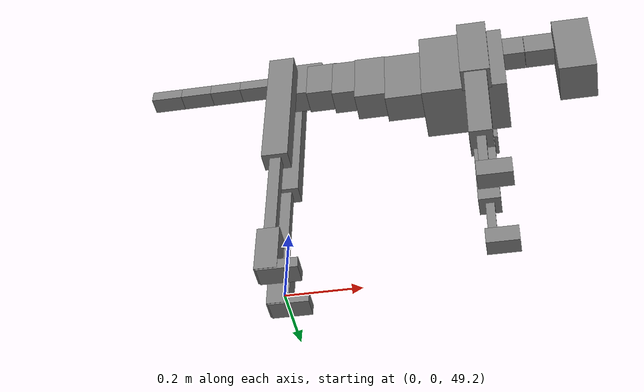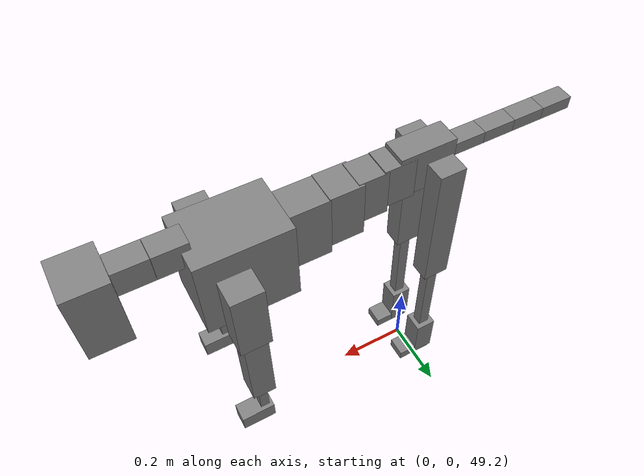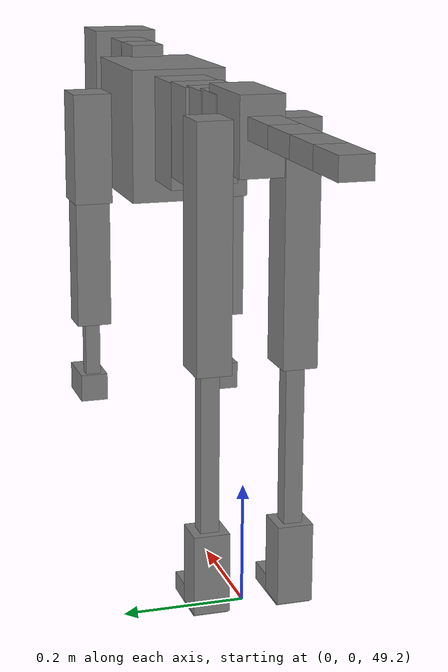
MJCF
<mujoco model="dog">

    <default>
        <joint armature="0.02" stiffness="1" damping="0.2" limited="true"/>
        <geom condim="3" friction="1 0.05 0.05" margin="0.01"/>
        <motor ctrllimited="true" ctrlrange="-1.0 1.0" forcelimited="true" gear="50"/>
    </default>

    <compiler inertiafromgeom="true" angle="radian"/>

    <option timestep="0.016" iterations="50" tolerance="1e-10" solver="Newton" jacobian="dense" cone="pyramidal"/>

    <size nconmax="20000" njmax="60000" nstack="5000000"/>
    <visual>
        <map force="0.1" zfar="30"/>
        <rgba haze="0.15 0.25 0.35 1"/>
        <quality shadowsize="2048"/>
        <global offwidth="800" offheight="800"/>
    </visual>

    <asset>
        <texture type="skybox" builtin="gradient" rgb1="0.3 0.5 0.7" rgb2="0 0 0" width="512" height="512"/>
        <texture name="texplane" type="2d" builtin="checker" rgb1=".2 .3 .4" rgb2=".1 0.15 0.2" width="512" height="512"
                 mark="cross" markrgb=".8 .8 .8"/>
        <texture name="texgeom" type="cube" builtin="flat" mark="cross" width="127" height="1278" rgb1="0.8 0.6 0.4"
                 rgb2="0.8 0.6 0.4" markrgb="1 1 1" random="0.01"/>

        <material name="matplane" reflectance="0.3" texture="texplane" texrepeat="1 1" texuniform="true"/>
        <material name="matgeom" texture="texgeom" texuniform="true" rgba="0.8 0.6 .4 1"/>
    </asset>

    <worldbody>
        <geom name="floor" pos="0 0 0" size="0 0 .25" type="plane" material="matplane" condim="3"/>

        <light directional="false" diffuse=".2 .2 .2" specular="0 0 0" pos="0 0 5" dir="0 0 -1" castshadow="false"/>
        <light mode="targetbodycom" target="torso" directional="false" diffuse=".8 .8 .8" specular="0.3 0.3 0.3"
               pos="0 0 4.0" dir="0 0 -1"/>

        <body name="root" pos="0 0 50">
            <freejoint name="root_1"/>
            <geom type="box" pos="0 0 -0.02" size="0.0774  0.0358  0.063" density="2030"/>

            <body name="spine1" pos="0.054 0 0">
                <joint name="spine1_y" axis="0 1 0" range="0 0.7" limited="true"/>
                <geom type="box" pos="0.02375 0 -0.03" size="0.04375  0.0375  0.05985" density="2030"/>

                <body name="spine2" pos="0.0612 0 0">
                    <joint name="spine2_y" axis="0 1 0" range="-0.15 0.15" limited="true"/>
                    <geom type="box" pos="0.03555  0  -0.04" size="0.04055  0.039  0.06615" density="2030"/>

                    <body name="spine3" pos="0.0730 0 0">
                        <joint name="spine3_y" axis="0 1 0" range="-0.15 0.15" limited="true"/>
                        <geom type="box" pos="0.03555  0  -0.057" size="0.04555  0.0445  0.081" density="2030"/>

                        <body name="spine4" pos="0.0780 0 0">
                            <joint name="spine4_y" axis="0 1 0" range="-0.15 0.15" limited="true"/>
                            <geom type="box" pos="0.05265  0  -0.07" size="0.05265  0.045  0.09135" density="2030"/>

                            <body name="torso" pos="0.1082 0 0">
                                <joint name="torso_y" axis="0 1 0" range="-0.15 0.15" limited="true"/>
                                <geom type="box" pos="0.11925  0  -0.085" size="0.11925  0.085  0.11745"
                                      density="2030"/>

                                <body name="neck1" pos="0.2160  0   0.0180">
                                    <joint name="neck1_y" axis="0 1 0" range="-1.2  -1" limited="true"/>
                                    <geom type="box" pos="0.0423  0  0" size="0.0423  0.03  0.036" density="2325"/>

                                    <body name="neck2" pos="0.0853  0  0">
                                        <joint name="neck2_y" axis="0 1 0" range="0.1  0" limited="true"/>
                                        <geom type="box" pos="0.0423  0  0" size="0.0423  0.03  0.036" density="2325"/>

                                        <body name="head" pos="0.0853  0  0">
                                            <joint name="head_y" axis="0 1 0" range="-0.3  -0.2" limited="true"/>
                                            <geom type="box" pos="0.0531  0  -0.055" size="0.0531  0.06  0.1044"
                                                  density="4030"/>

                                        </body>
                                    </body>
                                </body>

                                <body name="front_shoulder" pos="0.156  0   -0.0480">
                                    <joint name="front_shoulder_y" axis="0 1 0" range="-1 1.5" limited="true"/>
                                    <geom type="box" pos="0 0.13 -0.0741" size="0.0407  0.0348  0.1007" density="1158"/>
                                    <geom type="box" pos="0 -0.13 -0.0741" size="0.0407  0.0348  0.1007"
                                          density="1158"/>

                                    <body name="front_elbow" pos="0  0  -0.1481">
                                        <joint name="front_elbow_y" axis="0 1 0" range="-2 0" limited="true"/>
                                        <geom type="box" pos="0 0.13 -0.1299" size="0.0310  0.0317  0.1299"
                                              density="1081"/>
                                        <geom type="box" pos="0 -0.13 -0.1299" size="0.0310  0.0317  0.1299"
                                              density="1081"/>

                                        <body name="front_wrist" pos="0  0  -0.2599">
                                            <joint name="front_wrist_y" axis="0 1 0" range="-0.2 0" limited="true"/>
                                            <geom type="box" pos="0 0.13 -0.0574" size="0.0124  0.0138  0.0706"
                                                  density="1664"/>
                                            <geom type="box" pos="0 -0.13 -0.0574" size="0.0124  0.0138  0.0706"
                                                  density="1664"/>

                                            <body name="front_finger_end" pos="0  0  -0.1148">
                                                <joint name="front_finger_y" axis="0 1 0" range="-0.4 1"
                                                       limited="true"/>
                                                <geom type="box" pos="0.0252  0.13  -0.0105"
                                                      size="0.0461  0.0252  0.0255" density="1515"/>
                                                <geom type="box" pos="0.0252  -0.13  -0.0105"
                                                      size="0.0461  0.0252  0.0255" density="1515"/>

                                            </body>

                                        </body>
                                    </body>
                                </body>

                            </body>
                        </body>
                    </body>
                </body>
            </body>

            <body name="back_hip" pos="-0.03 0 -0.018">
                <joint name="back_hip_y" axis="0 1 0" range="-1.5 0.3" limited="true"/>
                <geom type="box" pos="0 0.07 -0.1747" size="0.0364  0.0285  0.1975" density="1154"/>
                <geom type="box" pos="0 -0.07 -0.1747" size="0.0364  0.0285  0.1975" density="1154"/>

                <body name="back_knee" pos="0  0  -0.3495">
                    <joint name="back_knee_y" axis="0 1 0" range="0 2.8" limited="true"/>
                    <geom type="box" pos="0 0.07 -0.1494" size="0.0156  0.0154  0.1649" density="1227"/>
                    <geom type="box" pos="0 -0.07 -0.1494" size="0.0156  0.0154  0.1649" density="1227"/>

                    <body name="back_ankle" pos="0  0  -0.2987">
                        <joint name="back_ankle_y" axis="0 1 0" range="-2.2 0" limited="true"/>
                        <geom type="box" pos="0 0.07 -0.0550" size="0.0296  0.0296  0.0662" density="1284"/>
                        <geom type="box" pos="0 -0.07 -0.0550" size="0.0296  0.0296  0.0662" density="1284"/>

                        <body name="back_toe_end" pos="0  0  -0.1099">
                            <joint name="back_toe_y" axis="0 1 0" range="-0.4 1" limited="true"/>
                            <geom type="box" pos="0.0289  0.07  -0.0002" size="0.0530  0.0289  0.0152" density="1515"/>
                            <geom type="box" pos="0.0289  -0.07  -0.0002" size="0.0530  0.0289  0.0152" density="1515"/>

                        </body>
                    </body>
                </body>
            </body>

            <body name="tail1" pos="-0.074 0 -0.006">
                <joint name="tail1_y" axis="0 1 0" range="-0.2 0.2" limited="true"/>
                <geom type="box" pos="-0.0536  0  0" size="0.045  0.025  0.0175" density="1587"/>

                <body name="tail2" pos="-0.09 0 0">
                    <joint name="tail2_y" axis="0 1 0" range="-0.2 0.2" limited="true"/>
                    <geom type="box" pos="-0.0536  0  0" size="0.045  0.025  0.0175" density="1587"/>

                    <body name="tail3" pos="-0.09 0 0">
                        <joint name="tail3_y" axis="0 1 0" range="-0.2 0.2" limited="true"/>
                        <geom type="box" pos="-0.0536  0  0" size="0.045  0.025  0.0175" density="1587"/>

                        <body name="tail4" pos="-0.09 0 0">
                            <joint name="tail4_y" axis="0 1 0" range="-0.2 0.2" limited="true"/>
                            <geom type="box" pos="-0.0536  0  0" size="0.045  0.025  0.0175" density="1587"/>

                        </body>
                    </body>
                </body>
            </body>
        </body>
    </worldbody>

    <actuator>
        <motor joint="spine1_y" forcerange="-150 150     "/>
        <motor joint="spine2_y" forcerange="-150 150     "/>
        <motor joint="spine3_y" forcerange="-150 150     "/>
        <motor joint="spine4_y" forcerange="-150 150     "/>
        <motor joint="torso_y" forcerange="-150 150     "/>
        <motor joint="neck1_y" forcerange="-100 100       "/>
        <motor joint="neck2_y" forcerange="-100 100       "/>
        <motor joint="head_y" forcerange="-150 150       "/>
        <motor joint="front_shoulder_y" forcerange="-139.66 192.17"/>
        <motor joint="front_elbow_y" forcerange="-160.72 169.49"/>
        <motor joint="front_wrist_y" forcerange="-53.38 56.80"/>
        <motor joint="front_finger_y" forcerange="-64.64 29.50"/>
        <motor joint="back_hip_y" forcerange="-361.20 219.35"/>
        <motor joint="back_knee_y" forcerange="-208.34 215.11"/>
        <motor joint="back_angle_y" forcerange="-179.50 193.47"/>
        <motor joint="back_toe_y" forcerange="-102.69 48.41"/>
        <motor joint="tail1_y" forcerange="-50 50     "/>
        <motor joint="tail2_y" forcerange="-50 50     "/>
        <motor joint="tail3_y" forcerange="-50 50     "/>
        <motor joint="tail4_y" forcerange="-50 50     "/>
    </actuator>
</mujoco>
